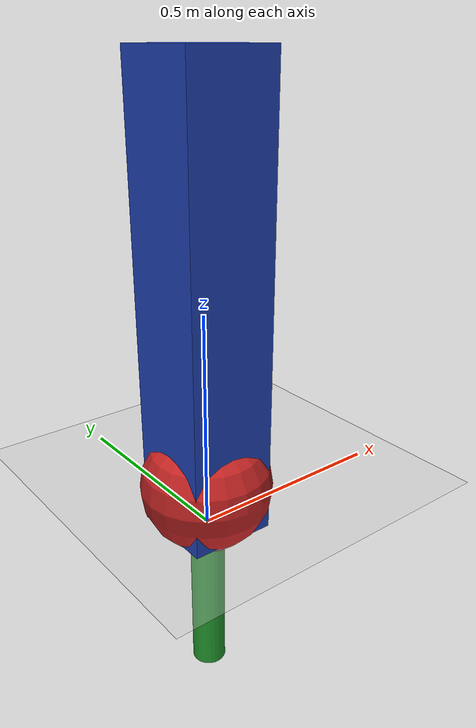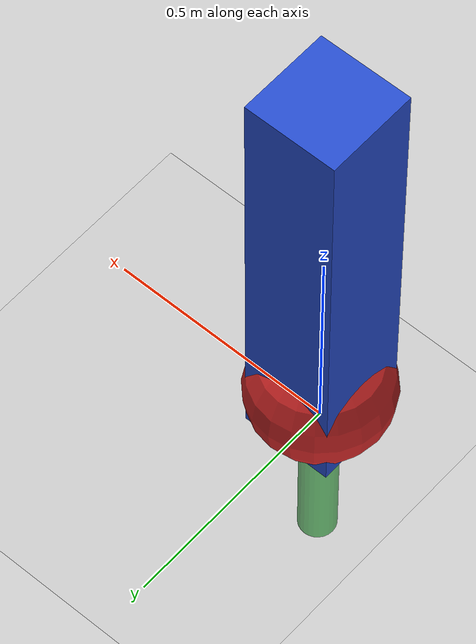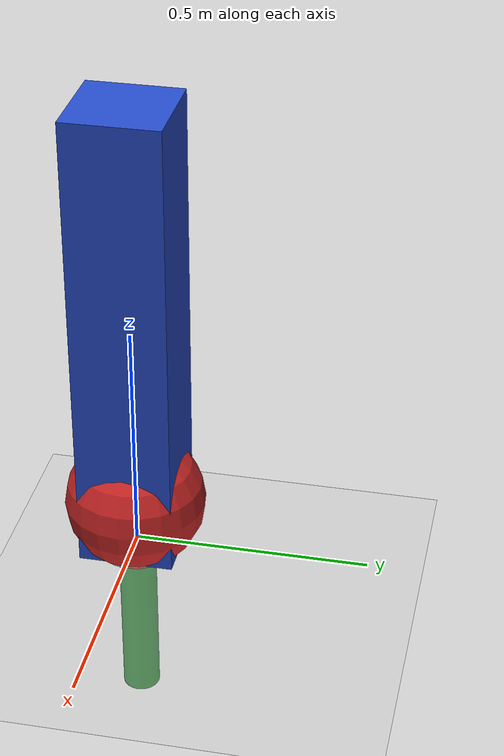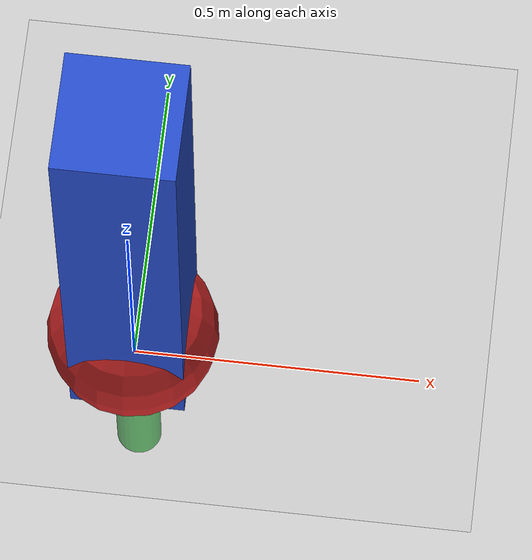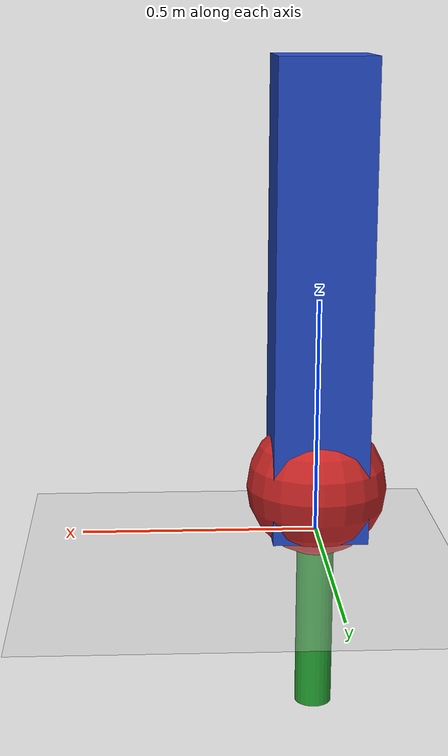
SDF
<?xml version="1.0"?>
<sdf version="1.6">
  <world name="simple_humanoid_world">

    <!-- Light Source -->
    <include>
      <uri>model://sun</uri>
    </include>

    <!-- Ground Plane -->
    <include>
      <uri>model://ground_plane</uri>
    </include>

    <!-- Basic Physics Configuration -->
    <physics name="default_physics" default="0" type="ode">
      <max_step_size>0.001</max_step_size>
      <real_time_factor>1.0</real_time_factor>
      <real_time_update_rate>1000</real_time_update_rate>
      <ode>
        <solver>
          <type>quick</type>
          <iters>50</iters>
          <precon_iters>0</precon_iters>
          <sor>1.3</sor>
          <rms_error_tolerance>0.0</rms_error_tolerance>
        </solver>
        <constraints>
          <cfm>0.0</cfm>
          <erp>0.2</erp>
          <contact_max_correcting_vel>100.0</contact_max_correcting_vel>
          <contact_surface_layer>0.001</contact_surface_layer>
        </constraints>
      </ode>
    </physics>

    <!-- Gravity -->
    <gravity>0 0 -9.8</gravity>

    <!-- Simple Humanoid Model (based on Module 1's URDF concepts) -->
    <model name="simplified_humanoid">
      <link name="base_link">
        <inertial>
          <mass>10.0</mass>
          <pose>0 0 0.5 0 0 0</pose>
          <inertia>
            <ixx>1.0</ixx><ixy>0.0</ixy><ixz>0.0</ixz>
            <iyy>1.0</iyy><iyz>0.0</iyz>
            <izz>1.0</izz>
          </inertia>
        </inertial>
        <visual name="base_visual">
          <pose>0 0 0.5 0 0 0</pose>
          <geometry><box><size>0.2 0.2 1.0</size></box></geometry>
          <material><script><uri>file://media/materials/scripts/gazebo.material</uri><name>Gazebo/Blue</name></script></material>
        </visual>
        <collision name="base_collision">
          <pose>0 0 0.5 0 0 0</pose>
          <geometry><box><size>0.2 0.2 1.0</size></box></geometry>
        </collision>
      </link>

      <link name="head_link">
        <inertial>
          <mass>1.0</mass>
          <pose>0 0 0.1 0 0 0</pose>
          <inertia>
            <ixx>0.1</ixx><ixy>0.0</ixy><ixz>0.0</ixz>
            <iyy>0.1</iyy><iyz>0.0</iyz>
            <izz>0.1</izz>
          </inertia>
        </inertial>
        <visual name="head_visual">
          <pose>0 0 0.1 0 0 0</pose>
          <geometry><sphere><radius>0.15</radius></sphere></geometry>
          <material><script><uri>file://media/materials/scripts/gazebo.material</uri><name>Gazebo/Red</name></script></material>
        </visual>
        <collision name="head_collision">
          <pose>0 0 0.1 0 0 0</pose>
          <geometry><sphere><radius>0.15</radius></sphere></geometry>
        </collision>
      </link>

      <joint name="base_to_head_joint" type="revolute">
        <pose>0 0 1.05 0 0 0</pose>
        <parent>base_link</parent>
        <child>head_link</child>
        <axis>
          <xyz>0 0 1</xyz>
          <limit lower="-1.57" upper="1.57"/>
        </axis>
      </joint>

      <!-- Simplified Arm Link and Joint (Left) -->
      <link name="left_arm_link">
        <inertial>
          <mass>0.5</mass>
          <pose>0 0 -0.2 0 0 0</pose>
          <inertia>
            <ixx>0.05</ixx><ixy>0.0</ixy><ixz>0.0</ixz>
            <iyy>0.05</iyy><iyz>0.0</iyz>
            <izz>0.05</izz>
          </inertia>
        </inertial>
        <visual name="left_arm_visual">
          <pose>0 0 -0.2 0 0 0</pose>
          <geometry><cylinder><radius>0.04</radius><length>0.4</length></cylinder></geometry>
          <material><script><uri>file://media/materials/scripts/gazebo.material</uri><name>Gazebo/Green</name></script></material>
        </visual>
        <collision name="left_arm_collision">
          <pose>0 0 -0.2 0 0 0</pose>
          <geometry><cylinder><radius>0.04</radius><length>0.4</length></cylinder></geometry>
        </collision>
      </link>

      <joint name="base_to_left_arm_joint" type="revolute">
        <pose>0 0.15 0.8 0 0 0</pose> <!-- Positioned on the left side of the base -->
        <parent>base_link</parent>
        <child>left_arm_link</child>
        <axis>
          <xyz>1 0 0</xyz>
          <limit lower="-1.57" upper="1.57"/>
        </axis>
      </joint>

    </model>

  </world>
</sdf>
